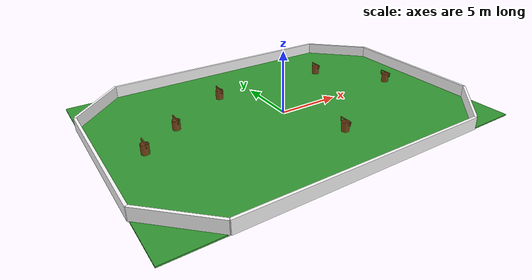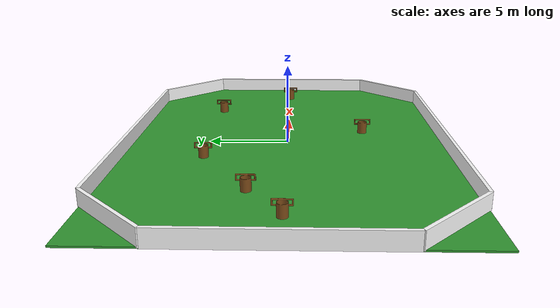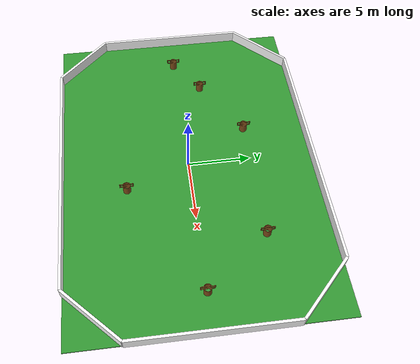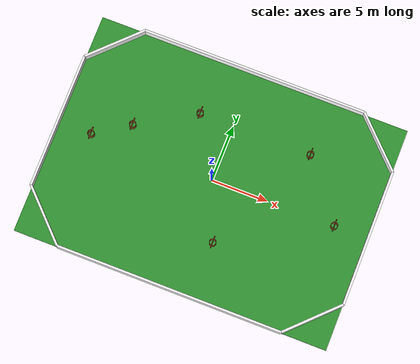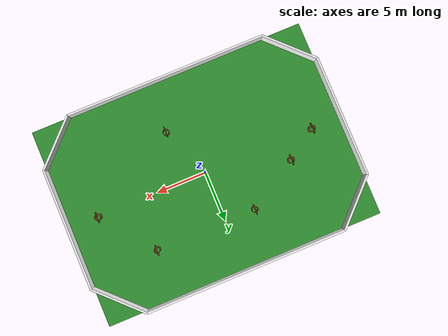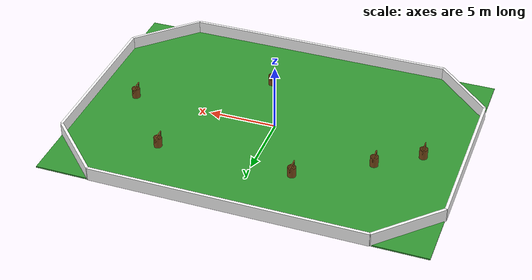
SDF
<sdf version="1.8">
 <world name="pioneer_world">
  <physics name="1ms" type="ignored">
   <max_step_size>0.001</max_step_size>
   <real_time_factor>1.0</real_time_factor>
  </physics>
  <plugin filename="libgz-sim-physics-system" name="gz::sim::systems::Physics"/>
  <plugin filename="libgz-sim-user-commands-system" name="gz::sim::systems::UserCommands"/>
  <plugin filename="libgz-sim-scene-broadcaster-system" name="gz::sim::systems::SceneBroadcaster"/>
  <plugin filename="libgz-sim-imu-system" name="gz::sim::systems::Imu"/>
  <plugin filename="libgz-sim-sensors-system.so" name="gz::sim::systems::Sensors"/>
  <plugin filename="libgz-sim-contact-system" name="gz::sim::systems::Contact"/>
  <plugin filename="libgz-sim-navsat-system" name="gz::sim::systems::NavSat"/>
  <spherical_coordinates>
   <surface_model>EARTH_WGS84</surface_model>
   <world_frame_orientation>ENU</world_frame_orientation>
   <latitude_deg>-31.9805</latitude_deg>
   <longitude_deg>115.8193</longitude_deg>
   <elevation>20.0</elevation>
   <heading_deg>0</heading_deg>
  </spherical_coordinates>
  <light type="directional" name="sun">
   <pose>0 0 10 0 0 0</pose>
   <diffuse>0.8 0.8 0.8 1</diffuse>
   <specular>0.2 0.2 0.2 1</specular>
   <attenuation>
    <range>1000</range>
    <constant>0.9</constant>
    <linear>0.01</linear>
    <quadratic>0.001</quadratic>
   </attenuation>
   <direction>-0.5 0.1 -0.9</direction>
  </light>
  <model name="ground_plane">
   <static>true</static>
   <link name="link">
    <collision name="collision"><geometry><box><size>28 20 0.1</size></box></geometry></collision>
    <visual name="visual">
     <geometry><box><size>28 20 0.1</size></box></geometry>
     <material>
      <ambient>0.2 0.5 0.2 1</ambient>
      <diffuse>0.2 0.6 0.2 1</diffuse>
      <specular>0.1 0.3 0.1 1</specular>
     </material>
    </visual>
   </link>
  </model>
  <model name="wall_n">
   <static>true</static>
   <pose>0 10 0.5 0 0 0</pose>
   <link name="link">
    <visual name="visual">
     <geometry><box><size>20 0.2 1.0</size></box></geometry>
     <material><ambient>1.0 1.0 1.0 1</ambient><diffuse>1.0 1.0 1.0 1</diffuse></material>
    </visual>
    <collision name="collision"><geometry><box><size>20 0.2 1.0</size></box></geometry></collision>
   </link>
  </model>
  <model name="wall_s">
   <static>true</static>
   <pose>0 -10 0.5 0 0 0</pose>
   <link name="link">
    <visual name="visual">
     <geometry><box><size>20 0.2 1.0</size></box></geometry>
     <material><ambient>1.0 1.0 1.0 1</ambient><diffuse>1.0 1.0 1.0 1</diffuse></material>
    </visual>
    <collision name="collision"><geometry><box><size>20 0.2 1.0</size></box></geometry></collision>
   </link>
  </model>
  <model name="wall_e">
   <static>true</static>
   <pose>14 0 0.5 0 0 0</pose>
   <link name="link">
    <visual name="visual">
     <geometry><box><size>0.2 12 1.0</size></box></geometry>
     <material><ambient>1.0 1.0 1.0 1</ambient><diffuse>1.0 1.0 1.0 1</diffuse></material>
    </visual>
    <collision name="collision"><geometry><box><size>0.2 12 1.0</size></box></geometry></collision>
   </link>
  </model>
  <model name="wall_w">
   <static>true</static>
   <pose>-14 0 0.5 0 0 0</pose>
   <link name="link">
    <visual name="visual">
     <geometry><box><size>0.2 12 1.0</size></box></geometry>
     <material><ambient>1.0 1.0 1.0 1</ambient><diffuse>1.0 1.0 1.0 1</diffuse></material>
    </visual>
    <collision name="collision"><geometry><box><size>0.2 12 1.0</size></box></geometry></collision>
   </link>
  </model>
  <model name="wall_ne">
   <static>true</static>
   <pose>12 8 0.5 0 0 -0.785</pose>
   <link name="link">
    <visual name="visual">
     <geometry><box><size>5.66 0.2 1.0</size></box></geometry>
     <material><ambient>1.0 1.0 1.0 1</ambient><diffuse>1.0 1.0 1.0 1</diffuse></material>
    </visual>
    <collision name="collision"><geometry><box><size>5.66 0.2 1.0</size></box></geometry></collision>
   </link>
  </model>
  <model name="wall_nw">
   <static>true</static>
   <pose>-12 8 0.5 0 0 0.785</pose>
   <link name="link">
    <visual name="visual">
     <geometry><box><size>5.66 0.2 1.0</size></box></geometry>
     <material><ambient>1.0 1.0 1.0 1</ambient><diffuse>1.0 1.0 1.0 1</diffuse></material>
    </visual>
    <collision name="collision"><geometry><box><size>5.66 0.2 1.0</size></box></geometry></collision>
   </link>
  </model>
  <model name="wall_se">
   <static>true</static>
   <pose>12 -8 0.5 0 0 0.785</pose>
   <link name="link">
    <visual name="visual">
     <geometry><box><size>5.66 0.2 1.0</size></box></geometry>
     <material><ambient>1.0 1.0 1.0 1</ambient><diffuse>1.0 1.0 1.0 1</diffuse></material>
    </visual>
    <collision name="collision"><geometry><box><size>5.66 0.2 1.0</size></box></geometry></collision>
   </link>
  </model>
  <model name="wall_sw">
   <static>true</static>
   <pose>-12 -8 0.5 0 0 -0.785</pose>
   <link name="link">
    <visual name="visual">
     <geometry><box><size>5.66 0.2 1.0</size></box></geometry>
     <material><ambient>1.0 1.0 1.0 1</ambient><diffuse>1.0 1.0 1.0 1</diffuse></material>
    </visual>
    <collision name="collision"><geometry><box><size>5.66 0.2 1.0</size></box></geometry></collision>
   </link>
  </model>
  <model name="bucket1">
   <static>true</static>
   <pose>-8 2 0 0 0 0</pose>
   <link name="link">
    <visual name="visual">
     <pose>0 0 0 1.5708 0 0</pose>
     <geometry>
      <mesh>
       <uri>file:///home/winton/ros2_ws/install/pioneer_robot/share/pioneer_robot/resources/meshes/bucket.obj</uri>
       <scale>0.001 0.001 0.001</scale>
      </mesh>
     </geometry>
     <material><ambient>0.5 0.3 0.1 1</ambient><diffuse>0.5 0.3 0.1 1</diffuse></material>
    </visual>
    <collision name="collision">
     <pose>0 0 0.5 0 0 0</pose>
     <geometry><cylinder><radius>0.4</radius><length>1.0</length></cylinder></geometry>
    </collision>
   </link>
  </model>
  <model name="bucket2">
   <static>true</static>
   <pose>7 5 0 0 0 0</pose>
   <link name="link">
    <visual name="visual">
     <pose>0 0 0 1.5708 0 0</pose>
     <geometry>
      <mesh>
       <uri>file:///home/winton/ros2_ws/install/pioneer_robot/share/pioneer_robot/resources/meshes/bucket.obj</uri>
       <scale>0.001 0.001 0.001</scale>
      </mesh>
     </geometry>
     <material><ambient>0.5 0.3 0.1 1</ambient><diffuse>0.5 0.3 0.1 1</diffuse></material>
    </visual>
    <collision name="collision">
     <pose>0 0 0.5 0 0 0</pose>
     <geometry><cylinder><radius>0.4</radius><length>1.0</length></cylinder></geometry>
    </collision>
   </link>
  </model>
  <model name="bucket4">
   <static>true</static>
   <pose>11 0 0 0 0 0</pose>
   <link name="link">
    <visual name="visual">
     <pose>0 0 0 1.5708 0 0</pose>
     <geometry>
      <mesh>
       <uri>file:///home/winton/ros2_ws/install/pioneer_robot/share/pioneer_robot/resources/meshes/bucket.obj</uri>
       <scale>0.001 0.001 0.001</scale>
      </mesh>
     </geometry>
     <material><ambient>0.5 0.3 0.1 1</ambient><diffuse>0.5 0.3 0.1 1</diffuse></material>
    </visual>
    <collision name="collision">
     <pose>0 0 0.5 0 0 0</pose>
     <geometry><cylinder><radius>0.4</radius><length>1.0</length></cylinder></geometry>
    </collision>
   </link>
  </model>
  <model name="bucket5">
   <static>true</static>
   <pose>-11 0 0 0 0 0</pose>
   <link name="link">
    <visual name="visual">
     <pose>0 0 0 1.5708 0 0</pose>
     <geometry>
      <mesh>
       <uri>file:///home/winton/ros2_ws/install/pioneer_robot/share/pioneer_robot/resources/meshes/bucket.obj</uri>
       <scale>0.001 0.001 0.001</scale>
      </mesh>
     </geometry>
     <material><ambient>0.5 0.3 0.1 1</ambient><diffuse>0.5 0.3 0.1 1</diffuse></material>
    </visual>
    <collision name="collision">
     <pose>0 0 0.5 0 0 0</pose>
     <geometry><cylinder><radius>0.4</radius><length>1.0</length></cylinder></geometry>
    </collision>
   </link>
  </model>
  <model name="bucket6">
   <static>true</static>
   <pose>-3 5 0 0 0 0</pose>
   <link name="link">
    <visual name="visual">
     <pose>0 0 0 1.5708 0 0</pose>
     <geometry>
      <mesh>
       <uri>file:///home/winton/ros2_ws/install/pioneer_robot/share/pioneer_robot/resources/meshes/bucket.obj</uri>
       <scale>0.001 0.001 0.001</scale>
      </mesh>
     </geometry>
     <material><ambient>0.5 0.3 0.1 1</ambient><diffuse>0.5 0.3 0.1 1</diffuse></material>
    </visual>
    <collision name="collision">
     <pose>0 0 0.5 0 0 0</pose>
     <geometry><cylinder><radius>0.4</radius><length>1.0</length></cylinder></geometry>
    </collision>
   </link>
  </model>
  <model name="bucket3">
   <static>true</static>
   <pose>2 -5 0 0 0 0</pose>
   <link name="link">
    <visual name="visual">
     <pose>0 0 0 1.5708 0 0</pose>
     <geometry>
      <mesh>
       <uri>file:///home/winton/ros2_ws/install/pioneer_robot/share/pioneer_robot/resources/meshes/bucket.obj</uri>
       <scale>0.001 0.001 0.001</scale>
      </mesh>
     </geometry>
     <material><ambient>0.5 0.3 0.1 1</ambient><diffuse>0.5 0.3 0.1 1</diffuse></material>
    </visual>
    <collision name="collision">
     <pose>0 0 0.5 0 0 0</pose>
     <geometry><cylinder><radius>0.4</radius><length>1.0</length></cylinder></geometry>
    </collision>
   </link>
  </model>
 </world>
</sdf>
